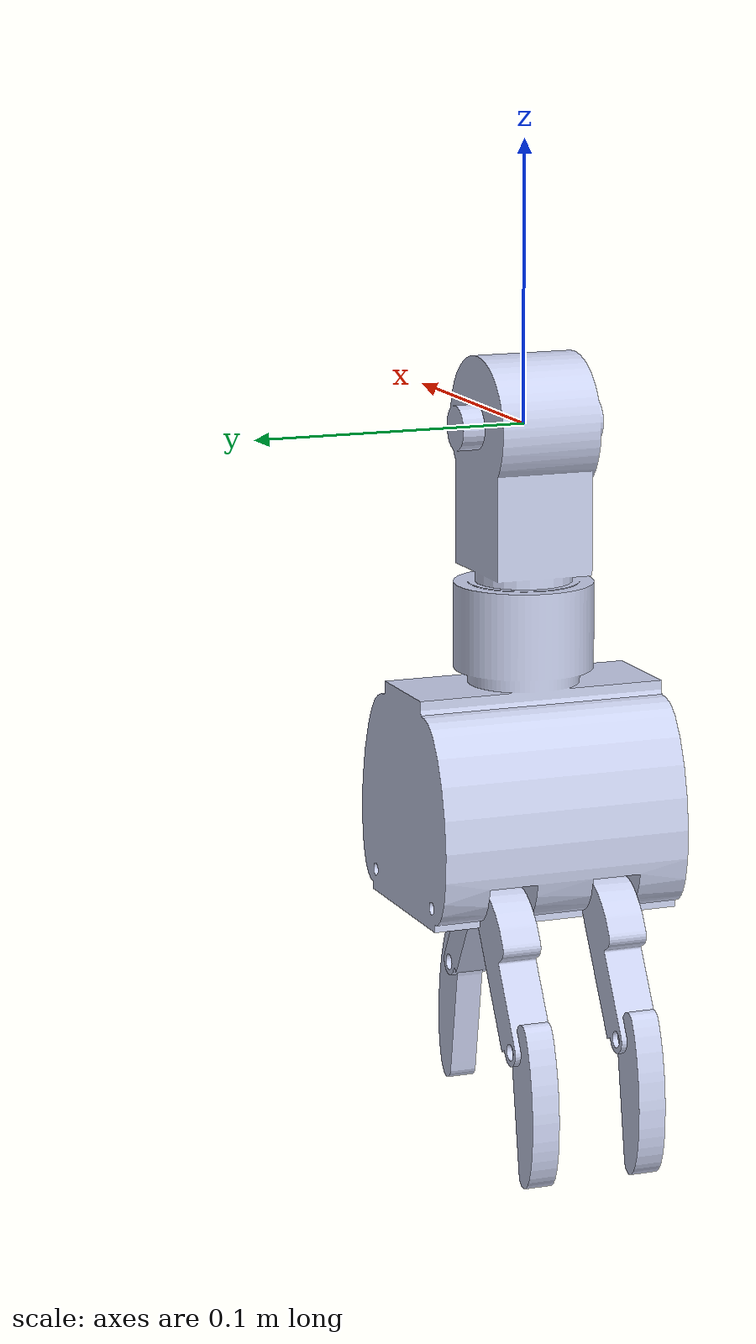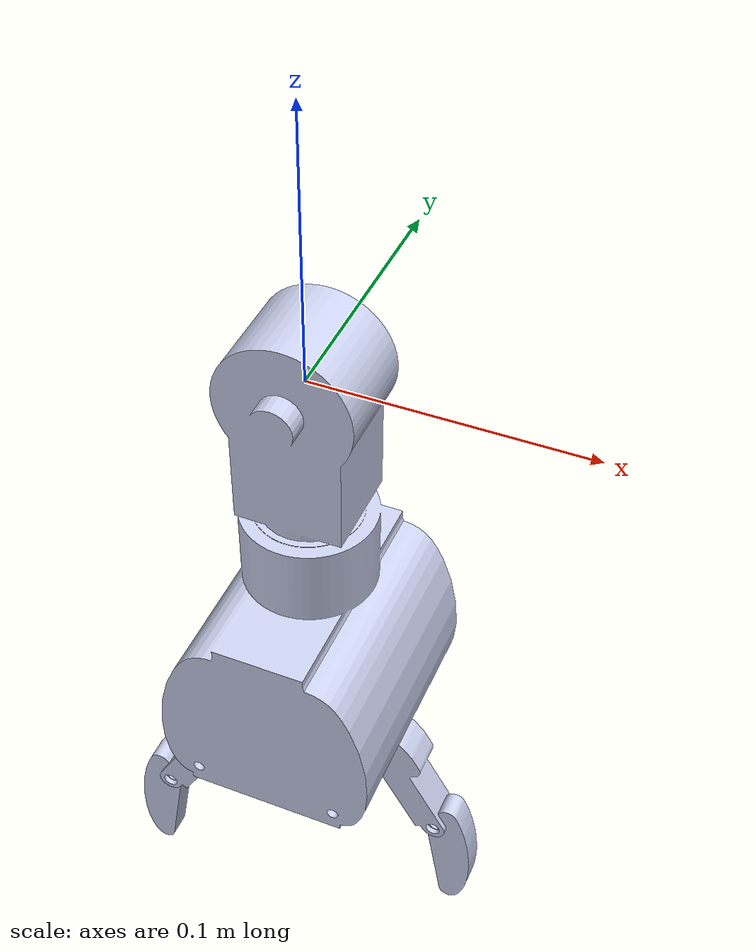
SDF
<?xml version="1.0"?>
<sdf version="1.7">
  <model name="TEO_rightLacqueyFetch">
    <!-- Base: Wrist (muñeca + palma) -->
    <link name="RightWrist_link">
      <pose>0 0 0 0 -0 0</pose>
      <inertial>
        <pose>-0.000050 -0.000055 -0.107329 0 -0 0</pose>
        <mass>0.358</mass>
        <inertia>
          <ixx>0.0033558744</ixx>
          <ixy>-0.000000324</ixy>
          <ixz>0.0000088739</ixz>
          <iyy>0.0031520281</iyy>
          <iyz>0.0000036082</iyz>
          <izz>0.0010088020</izz>
        </inertia>
      </inertial>
      <visual name="RightWrist_visual">
        <geometry>
          <mesh>
            <scale>0.001 0.001 0.001</scale>
            <uri>model://teo_lacqueyFetch/meshes/visual/Wrist.dae</uri>
          </mesh>
        </geometry>
        <material>
          <ambient>0.792157 0.819608 0.933333 1</ambient>
          <diffuse>0.792157 0.819608 0.933333 1</diffuse>
          <specular>0.633726 0.655686 0.746667 1</specular>
        </material>
      </visual>
      <collision name="RightWrist_collision">
        <pose>0.0 0.0 0.0 1.57079632679 0.0 0.0</pose>
        <geometry>
          <mesh>
            <scale>0.001 0.001 0.001</scale>
            <uri>model://teo_lacqueyFetch/meshes/collision/Wrist.stl</uri>
          </mesh>
        </geometry>
         <max_contacts>10</max_contacts>
        <surface>
          <contact>
            <ode>
              <kp>1000000</kp>
              <kd>100</kd>
              <max_vel>0.001</max_vel>
              <min_depth>0.001</min_depth>
            </ode>
          </contact>
          <friction>
            <ode>
              <mu>1</mu>
              <mu2>1</mu2>
              <slip1>0</slip1>
              <slip2>0</slip2>
            </ode>
          </friction>
        </surface>
      </collision>
    </link>

    <!-- Dedo pulgar (thumb): falange proximal (00) -->
    <link name="RightThumbProximal_link">
      <pose>0.027472302 0 -0.164588951 0 -0 0</pose>
      <inertial>
        <pose>0.012547 0.000009 -0.020977 0 -0 0</pose>
        <mass>0.018092</mass>
        <inertia>
          <ixx>0.0000042540336</ixx>
          <ixy>-0.000000000003</ixy>
          <ixz>0.0000016664918</ixz>
          <iyy>0.0000051152263</iyy>
          <iyz>-0.000000000012</iyz>
          <izz>0.0000014691909</izz>
        </inertia>
      </inertial>
      <visual name="RightThumbProximalRight_visual">
        <geometry>
          <mesh>
            <scale>0.001 0.001 0.001</scale>
            <uri>model://teo_lacqueyFetch/meshes/visual/PhalangeProximal.dae</uri>
          </mesh>
        </geometry>
        <material>
          <ambient>0.792157 0.819608 0.933333 1</ambient>
          <diffuse>0.792157 0.819608 0.933333 1</diffuse>
          <specular>0.633726 0.655686 0.746667 1</specular>
        </material>
      </visual>
      <collision name="RightThumbProximal_collision">
        <pose>0.0 0.0 0.0 1.57079632679 0.0 -3.14159265359</pose>
        <geometry>
          <mesh>
            <scale>0.001 0.001 0.001</scale>
            <uri>model://teo_lacqueyFetch/meshes/collision/PhalangeProximal.stl</uri>
          </mesh>
        </geometry>
        <max_contacts>2</max_contacts>
        <surface>
          <contact>
            <ode>
              <kp>1000000</kp>
              <kd>100</kd>
              <max_vel>0.001</max_vel>
              <min_depth>0.001</min_depth>
            </ode>
          </contact>
          <friction>
            <ode>
              <mu>1</mu>
              <mu2>1</mu2>
              <slip1>0</slip1>
              <slip2>0</slip2>
            </ode>
          </friction>
        </surface>
      </collision>
    </link>

    <joint name="RightThumbProximal" type="revolute">
      <parent>TEO_rightLacqueyFetch::RightWrist_link</parent>
      <child>TEO_rightLacqueyFetch::RightThumbProximal_link</child>
      <axis>
        <xyz>0 -1 0</xyz>
        <limit>
          <lower>-0.523599</lower>
          <upper>0.174533</upper>
        </limit>
        <dynamics>
          <damping>0.001</damping>
          <friction>0.7</friction>
        </dynamics>
      </axis>
    </joint>

    <!-- Dedo pulgar (thumb): falange distal (00) -->
    <link name="RightThumbDistal_link">
      <pose>0.054472302 0 -0.211588951 0 -0 0</pose>
      <inertial>
        <pose>0.006817 0 -0.017343 0 -0 0</pose>
        <mass>0.01234</mass>
        <inertia>
          <ixx>0.000002852</ixx>
          <ixy>0.000000000</ixy>
          <ixz>0.000000239</ixz>
          <iyy>0.000003003</iyy>
          <iyz>0.00000000</iyz>
          <izz>0.000000357</izz>
        </inertia>
      </inertial>
      <visual name="RightThumbDistal_visual">
        <geometry>
          <mesh>
            <scale>0.001 0.001 0.001</scale>
            <uri>model://teo_lacqueyFetch/meshes/visual/PhalangeDistal.dae</uri>
          </mesh>
        </geometry>
        <material>
          <ambient>0.792157 0.819608 0.933333 1</ambient>
          <diffuse>0.792157 0.819608 0.933333 1</diffuse>
          <specular>0.633726 0.655686 0.746667 1</specular>
        </material>
      </visual>
      <collision name="RightThumbDistal_collision">
        <pose>0.0 0.0 0.0 1.57079632679 0.0 -3.14159265359</pose>
        <geometry>
          <mesh>
            <scale>0.001 0.001 0.001</scale>
            <uri>model://teo_lacqueyFetch/meshes/collision/PhalangeDistal.stl</uri>
          </mesh>
        </geometry>
        <max_contacts>2</max_contacts>
        <surface>
          <contact>
            <ode>
              <kp>1000000</kp>
              <kd>100</kd>
              <max_vel>0.001</max_vel>
              <min_depth>0.001</min_depth>
            </ode>
          </contact>
          <friction>
            <ode>
              <mu>1</mu>
              <mu2>1</mu2>
              <slip1>0</slip1>
              <slip2>0</slip2>
            </ode>
          </friction>
        </surface>
      </collision>
    </link>
    <joint name="RightThumbDistal" type="revolute">
      <parent>TEO_rightLacqueyFetch::RightThumbProximal_link</parent>
      <child>TEO_rightLacqueyFetch::RightThumbDistal_link</child>
      <axis>
        <xyz>0 -1 0</xyz>
        <limit>
          <lower>-0.872665</lower>
          <upper>0.174533</upper>
        </limit>
        <dynamics>
          <damping>0.001</damping>
          <friction>0.7</friction>
        </dynamics>
      </axis>
    </joint>

    <!-- Dedo indice: falange proximal (01) -->
    <link name="ExternalRightFingerProximal_link">
      <pose>-0.02852741 -0.02010339 -0.164409358 0 0 -3.14159265359</pose>
      <inertial>
        <pose>0.012547 0.000009 -0.020977 0 -0 0</pose>
        <mass>0.018092</mass>
        <inertia>
          <ixx>0.0000042540336</ixx>
          <ixy>-0.000000000003</ixy>
          <ixz>0.0000016664918</ixz>
          <iyy>0.0000051152263</iyy>
          <iyz>-0.000000000012</iyz>
          <izz>0.0000014691909</izz>
        </inertia>
      </inertial>
      <visual name="ExternalRightFingerProximal_visual">
        <geometry>
          <mesh>
            <scale>0.001 0.001 0.001</scale>
            <uri>model://teo_lacqueyFetch/meshes/visual/PhalangeProximal.dae</uri>
          </mesh>
        </geometry>
        <material>
          <ambient>0.792157 0.819608 0.933333 1</ambient>
          <diffuse>0.792157 0.819608 0.933333 1</diffuse>
          <specular>0.633726 0.655686 0.746667 1</specular>
        </material>
      </visual>
      <collision name="ExternalRightFingerProximal_collision">
        <pose>0.0 0.0 0.0 1.57079632679 0.0 -3.14159265359</pose>
        <geometry>
          <mesh>
            <scale>0.001 0.001 0.001</scale>
            <uri>model://teo_lacqueyFetch/meshes/collision/PhalangeProximal.stl</uri>
          </mesh>
        </geometry>
        <max_contacts>2</max_contacts>
        <surface>
          <contact>
            <ode>
              <kp>1000000</kp>
              <kd>100</kd>
              <max_vel>0.001</max_vel>
              <min_depth>0.001</min_depth>
            </ode>
          </contact>
          <friction>
            <ode>
              <mu>1</mu>
              <mu2>1</mu2>
              <slip1>0</slip1>
              <slip2>0</slip2>
            </ode>
          </friction>
        </surface>
      </collision>
    </link>

    <joint name="ExternalRightFingerProximal" type="revolute">
      <parent>TEO_rightLacqueyFetch::RightWrist_link</parent>
      <child>TEO_rightLacqueyFetch::ExternalRightFingerProximal_link</child>
      <axis>
        <xyz>0 -1 0</xyz>
        <limit>
          <lower>-0.523599</lower>
          <upper>0.174533</upper>
        </limit>
        <dynamics>
          <damping>0.001</damping>
          <friction>0.7</friction>
        </dynamics>
      </axis>
    </joint>

    <!-- Dedo indice: falange distal (01) -->
    <link name="ExternalRightFingerDistal_link">
      <pose>-0.05552741 -0.02010339 -0.211409358 0 -0 -3.14159265359</pose>
      <inertial>
        <pose>0.006817 0 -0.017343 0 -0 0</pose>
        <mass>0.01234</mass>
        <inertia>
          <ixx>0.000002852</ixx>
          <ixy>0.000000000</ixy>
          <ixz>0.000000239</ixz>
          <iyy>0.000003003</iyy>
          <iyz>0.00000000</iyz>
          <izz>0.000000357</izz>
        </inertia>
      </inertial>
      <visual name="ExternalRightFingerDistal_visual">
        <geometry>
          <mesh>
            <scale>0.001 0.001 0.001</scale>
            <uri>model://teo_lacqueyFetch/meshes/visual/PhalangeDistal.dae</uri>
          </mesh>
        </geometry>
        <material>
          <ambient>0.792157 0.819608 0.933333 1</ambient>
          <diffuse>0.792157 0.819608 0.933333 1</diffuse>
          <specular>0.633726 0.655686 0.746667 1</specular>
        </material>
      </visual>
      <collision name="ExternalRightFingerDistal_collision">
        <pose>0.0 0.0 0.0 1.57079632679 0.0 -3.14159265359</pose>
        <geometry>
          <mesh>
            <scale>0.001 0.001 0.001</scale>
            <uri>model://teo_lacqueyFetch/meshes/collision/PhalangeDistal.stl</uri>
          </mesh>
        </geometry>
        <max_contacts>2</max_contacts>
        <surface>
          <contact>
            <ode>
              <kp>1000000</kp>
              <kd>100</kd>
              <max_vel>0.001</max_vel>
              <min_depth>0.001</min_depth>
            </ode>
          </contact>
          <friction>
            <ode>
              <mu>1</mu>
              <mu2>1</mu2>
              <slip1>0</slip1>
              <slip2>0</slip2>
            </ode>
          </friction>
        </surface>
      </collision>
    </link>
    <joint name="ExternalRightFingerDistal" type="revolute">
      <parent>TEO_rightLacqueyFetch::ExternalRightFingerProximal_link</parent>
      <child>TEO_rightLacqueyFetch::ExternalRightFingerDistal_link</child>
      <axis>
        <xyz>0 -1 0</xyz>
        <limit>
          <lower>-0.872665</lower>
          <upper>0.174533</upper>
        </limit>
        <dynamics>
          <damping>0.001</damping>
          <friction>0.7</friction>
        </dynamics>
      </axis>
    </joint>

    <!-- Dedo medio: falange proximal (02) -->
    <link name="InternalRightFingerProximal_link">
      <pose>-0.02852741 0.02010339 -0.164409358 0 0 -3.14159265359</pose>
      <inertial>
        <pose>0.012547 0.000009 -0.020977 0 -0 0</pose>
        <mass>0.018092</mass>
        <inertia>
          <ixx>0.0000042540336</ixx>
          <ixy>-0.000000000003</ixy>
          <ixz>0.0000016664918</ixz>
          <iyy>0.0000051152263</iyy>
          <iyz>-0.000000000012</iyz>
          <izz>0.0000014691909</izz>
        </inertia>
      </inertial>
      <visual name="InternalRightFingerProximal_visual">
        <geometry>
          <mesh>
            <scale>0.001 0.001 0.001</scale>
            <uri>model://teo_lacqueyFetch/meshes/visual/PhalangeProximal.dae</uri>
          </mesh>
        </geometry>
        <material>
          <ambient>0.792157 0.819608 0.933333 1</ambient>
          <diffuse>0.792157 0.819608 0.933333 1</diffuse>
          <specular>0.633726 0.655686 0.746667 1</specular>
        </material>
      </visual>
      <collision name="InternalRightFingerProximal_collision">
        <pose>0.0 0.0 0.0 1.57079632679 0.0 -3.14159265359</pose>
        <geometry>
          <mesh>
            <scale>0.001 0.001 0.001</scale>
            <uri>model://teo_lacqueyFetch/meshes/collision/PhalangeProximal.stl</uri>
          </mesh>
        </geometry>
        <max_contacts>2</max_contacts>
        <surface>
          <contact>
            <ode>
              <kp>1000000</kp>
              <kd>100</kd>
              <max_vel>0.001</max_vel>
              <min_depth>0.001</min_depth>
            </ode>
          </contact>
          <friction>
            <ode>
              <mu>1</mu>
              <mu2>1</mu2>
              <slip1>0</slip1>
              <slip2>0</slip2>
            </ode>
          </friction>
        </surface>
      </collision>
    </link>

    <joint name="InternalRightFingerProximal" type="revolute">
      <parent>TEO_rightLacqueyFetch::RightWrist_link</parent>
      <child>TEO_rightLacqueyFetch::InternalRightFingerProximal_link</child>
      <axis>
        <xyz>0 -1 0</xyz>
        <limit>
          <lower>-0.523599</lower>
          <upper>0.174533</upper>
        </limit>
        <dynamics>
          <damping>0.001</damping>
          <friction>0.7</friction>
        </dynamics>
      </axis>
    </joint>

    <!-- Dedo medio: falange distal (01) -->
    <link name="InternalRightFingerDistal_link">
      <pose>-0.05552741 0.02010339 -0.211409358 0 -0 -3.14159265359</pose>
      <inertial>
        <pose>0.006817 0 -0.017343 0 -0 0</pose>
        <mass>0.01234</mass>
        <inertia>
          <ixx>0.000002852</ixx>
          <ixy>0.000000000</ixy>
          <ixz>0.000000239</ixz>
          <iyy>0.000003003</iyy>
          <iyz>0.00000000</iyz>
          <izz>0.000000357</izz>
        </inertia>
      </inertial>
      <visual name="InternalRightFingerDistal_visual">
        <geometry>
          <mesh>
            <scale>0.001 0.001 0.001</scale>
            <uri>model://teo_lacqueyFetch/meshes/visual/PhalangeDistal.dae</uri>
          </mesh>
        </geometry>
        <material>
          <ambient>0.792157 0.819608 0.933333 1</ambient>
          <diffuse>0.792157 0.819608 0.933333 1</diffuse>
          <specular>0.633726 0.655686 0.746667 1</specular>
        </material>
      </visual>
      <collision name="InternalRightFingerDistal_collision">
        <pose>0.0 0.0 0.0 1.57079632679 0.0 -3.14159265359</pose>
        <geometry>
          <mesh>
            <scale>0.001 0.001 0.001</scale>
            <uri>model://teo_lacqueyFetch/meshes/collision/PhalangeDistal.stl</uri>
          </mesh>
        </geometry>
        <max_contacts>2</max_contacts>
        <surface>
          <contact>
            <ode>
              <kp>1000000</kp>
              <kd>100</kd>
              <max_vel>0.001</max_vel>
              <min_depth>0.001</min_depth>
            </ode>
          </contact>
          <friction>
            <ode>
              <mu>1</mu>
              <mu2>1</mu2>
              <slip1>0</slip1>
              <slip2>0</slip2>
            </ode>
          </friction>
        </surface>
      </collision>
    </link>
    <joint name="InternalRightFingerDistal" type="revolute">
      <parent>TEO_rightLacqueyFetch::InternalRightFingerProximal_link</parent>
      <child>TEO_rightLacqueyFetch::InternalRightFingerDistal_link</child>
      <axis>
        <xyz>0 -1 0</xyz>
        <limit>
          <lower>-0.872665</lower>
          <upper>0.174533</upper>
        </limit>
        <dynamics>
          <damping>0.001</damping>
          <friction>0.7</friction>
        </dynamics>
      </axis>
    </joint>

    <plugin name="controlboard_rightLacqueyFetch_thumb" filename="libgazebo_yarp_controlboard.so">
      <yarpConfigurationFile>model://teo_lacqueyFetch/conf/gazebo_teo_rightLacqueyFetch_thumb.ini</yarpConfigurationFile>
    </plugin>

    <plugin name="controlboard_rightLacqueyFetch_externalFinger" filename="libgazebo_yarp_controlboard.so">
      <yarpConfigurationFile>model://teo_lacqueyFetch/conf/gazebo_teo_rightLacqueyFetch_externalFinger.ini</yarpConfigurationFile>
    </plugin>

    <plugin name="controlboard_rightLacqueyFetch_internalFinger" filename="libgazebo_yarp_controlboard.so">
      <yarpConfigurationFile>model://teo_lacqueyFetch/conf/gazebo_teo_rightLacqueyFetch_internalFinger.ini</yarpConfigurationFile>
    </plugin>

  </model>
</sdf>
